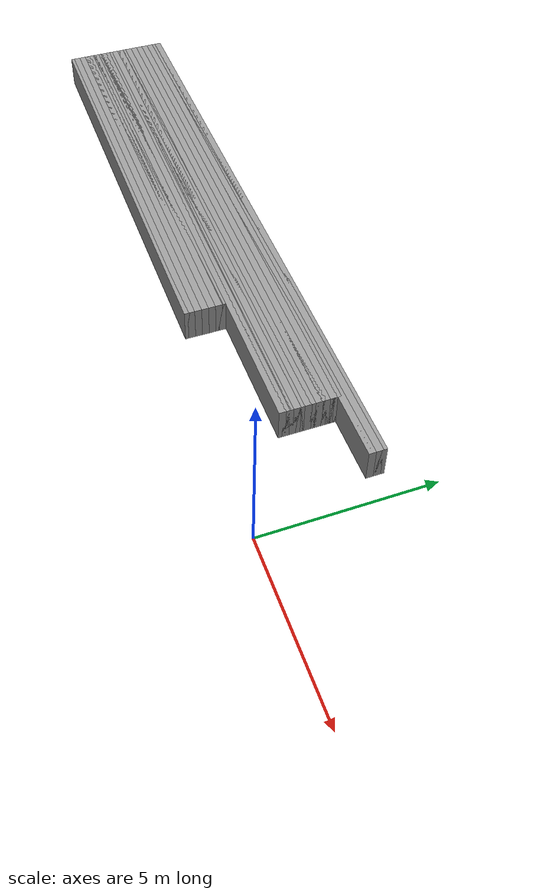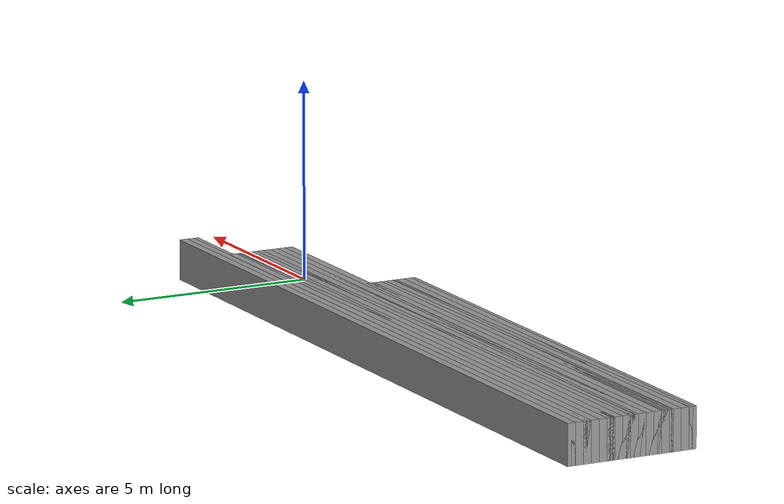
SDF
<sdf version="1.6">
 <world name="GridMap">
  <model name="GridMap">
   <link name="Wall_(131.5,4.0)">
    <collision name="Wall_(131.5,4.0)_Collision">
     <geometry><box><size>13.5 0.2 1.0</size></box></geometry>
     <pose>-13.15 0.4 0.5 0 -0 0</pose>
    </collision>
    <visual name="Wall_(131.5,4.0)_Visual">
     <geometry><box><size>13.5 0.2 1.0</size></box></geometry>
     <pose>-13.15 0.4 0.5 0 -0 0</pose>
     <material>
      <script><uri>file://media/materials/scripts/gazebo.material</uri><name>Gazebo/Grey</name></script>
      <ambient>1 1 1 1</ambient>
     </material>
     <meta><layer>0</layer></meta>
    </visual>
    <pose>0 0 0.5 0 -0 0</pose>
   </link>
   <link name="Wall_(131.5,5.0)">
    <collision name="Wall_(131.5,5.0)_Collision">
     <geometry><box><size>13.5 0.2 1.0</size></box></geometry>
     <pose>-13.15 0.5 0.5 0 -0 0</pose>
    </collision>
    <visual name="Wall_(131.5,5.0)_Visual">
     <geometry><box><size>13.5 0.2 1.0</size></box></geometry>
     <pose>-13.15 0.5 0.5 0 -0 0</pose>
     <material>
      <script><uri>file://media/materials/scripts/gazebo.material</uri><name>Gazebo/Grey</name></script>
      <ambient>1 1 1 1</ambient>
     </material>
     <meta><layer>0</layer></meta>
    </visual>
    <pose>0 0 0.5 0 -0 0</pose>
   </link>
   <link name="Wall_(131.5,6.0)">
    <collision name="Wall_(131.5,6.0)_Collision">
     <geometry><box><size>13.5 0.2 1.0</size></box></geometry>
     <pose>-13.15 0.6000000000000001 0.5 0 -0 0</pose>
    </collision>
    <visual name="Wall_(131.5,6.0)_Visual">
     <geometry><box><size>13.5 0.2 1.0</size></box></geometry>
     <pose>-13.15 0.6000000000000001 0.5 0 -0 0</pose>
     <material>
      <script><uri>file://media/materials/scripts/gazebo.material</uri><name>Gazebo/Grey</name></script>
      <ambient>1 1 1 1</ambient>
     </material>
     <meta><layer>0</layer></meta>
    </visual>
    <pose>0 0 0.5 0 -0 0</pose>
   </link>
   <link name="Wall_(131.5,7.0)">
    <collision name="Wall_(131.5,7.0)_Collision">
     <geometry><box><size>13.5 0.2 1.0</size></box></geometry>
     <pose>-13.15 0.7000000000000001 0.5 0 -0 0</pose>
    </collision>
    <visual name="Wall_(131.5,7.0)_Visual">
     <geometry><box><size>13.5 0.2 1.0</size></box></geometry>
     <pose>-13.15 0.7000000000000001 0.5 0 -0 0</pose>
     <material>
      <script><uri>file://media/materials/scripts/gazebo.material</uri><name>Gazebo/Grey</name></script>
      <ambient>1 1 1 1</ambient>
     </material>
     <meta><layer>0</layer></meta>
    </visual>
    <pose>0 0 0.5 0 -0 0</pose>
   </link>
   <link name="Wall_(131.5,8.0)">
    <collision name="Wall_(131.5,8.0)_Collision">
     <geometry><box><size>13.5 0.2 1.0</size></box></geometry>
     <pose>-13.15 0.8 0.5 0 -0 0</pose>
    </collision>
    <visual name="Wall_(131.5,8.0)_Visual">
     <geometry><box><size>13.5 0.2 1.0</size></box></geometry>
     <pose>-13.15 0.8 0.5 0 -0 0</pose>
     <material>
      <script><uri>file://media/materials/scripts/gazebo.material</uri><name>Gazebo/Grey</name></script>
      <ambient>1 1 1 1</ambient>
     </material>
     <meta><layer>0</layer></meta>
    </visual>
    <pose>0 0 0.5 0 -0 0</pose>
   </link>
   <link name="Wall_(131.5,9.0)">
    <collision name="Wall_(131.5,9.0)_Collision">
     <geometry><box><size>13.5 0.2 1.0</size></box></geometry>
     <pose>-13.15 0.9 0.5 0 -0 0</pose>
    </collision>
    <visual name="Wall_(131.5,9.0)_Visual">
     <geometry><box><size>13.5 0.2 1.0</size></box></geometry>
     <pose>-13.15 0.9 0.5 0 -0 0</pose>
     <material>
      <script><uri>file://media/materials/scripts/gazebo.material</uri><name>Gazebo/Grey</name></script>
      <ambient>1 1 1 1</ambient>
     </material>
     <meta><layer>0</layer></meta>
    </visual>
    <pose>0 0 0.5 0 -0 0</pose>
   </link>
   <link name="Wall_(131.5,10.0)">
    <collision name="Wall_(131.5,10.0)_Collision">
     <geometry><box><size>13.5 0.2 1.0</size></box></geometry>
     <pose>-13.15 1.0 0.5 0 -0 0</pose>
    </collision>
    <visual name="Wall_(131.5,10.0)_Visual">
     <geometry><box><size>13.5 0.2 1.0</size></box></geometry>
     <pose>-13.15 1.0 0.5 0 -0 0</pose>
     <material>
      <script><uri>file://media/materials/scripts/gazebo.material</uri><name>Gazebo/Grey</name></script>
      <ambient>1 1 1 1</ambient>
     </material>
     <meta><layer>0</layer></meta>
    </visual>
    <pose>0 0 0.5 0 -0 0</pose>
   </link>
   <link name="Wall_(131.5,11.0)">
    <collision name="Wall_(131.5,11.0)_Collision">
     <geometry><box><size>13.5 0.2 1.0</size></box></geometry>
     <pose>-13.15 1.1 0.5 0 -0 0</pose>
    </collision>
    <visual name="Wall_(131.5,11.0)_Visual">
     <geometry><box><size>13.5 0.2 1.0</size></box></geometry>
     <pose>-13.15 1.1 0.5 0 -0 0</pose>
     <material>
      <script><uri>file://media/materials/scripts/gazebo.material</uri><name>Gazebo/Grey</name></script>
      <ambient>1 1 1 1</ambient>
     </material>
     <meta><layer>0</layer></meta>
    </visual>
    <pose>0 0 0.5 0 -0 0</pose>
   </link>
   <link name="Wall_(131.5,12.0)">
    <collision name="Wall_(131.5,12.0)_Collision">
     <geometry><box><size>13.5 0.2 1.0</size></box></geometry>
     <pose>-13.15 1.2000000000000002 0.5 0 -0 0</pose>
    </collision>
    <visual name="Wall_(131.5,12.0)_Visual">
     <geometry><box><size>13.5 0.2 1.0</size></box></geometry>
     <pose>-13.15 1.2000000000000002 0.5 0 -0 0</pose>
     <material>
      <script><uri>file://media/materials/scripts/gazebo.material</uri><name>Gazebo/Grey</name></script>
      <ambient>1 1 1 1</ambient>
     </material>
     <meta><layer>0</layer></meta>
    </visual>
    <pose>0 0 0.5 0 -0 0</pose>
   </link>
   <link name="Wall_(131.5,13.0)">
    <collision name="Wall_(131.5,13.0)_Collision">
     <geometry><box><size>13.5 0.2 1.0</size></box></geometry>
     <pose>-13.15 1.3 0.5 0 -0 0</pose>
    </collision>
    <visual name="Wall_(131.5,13.0)_Visual">
     <geometry><box><size>13.5 0.2 1.0</size></box></geometry>
     <pose>-13.15 1.3 0.5 0 -0 0</pose>
     <material>
      <script><uri>file://media/materials/scripts/gazebo.material</uri><name>Gazebo/Grey</name></script>
      <ambient>1 1 1 1</ambient>
     </material>
     <meta><layer>0</layer></meta>
    </visual>
    <pose>0 0 0.5 0 -0 0</pose>
   </link>
   <link name="Wall_(131.5,14.0)">
    <collision name="Wall_(131.5,14.0)_Collision">
     <geometry><box><size>13.5 0.2 1.0</size></box></geometry>
     <pose>-13.15 1.4000000000000001 0.5 0 -0 0</pose>
    </collision>
    <visual name="Wall_(131.5,14.0)_Visual">
     <geometry><box><size>13.5 0.2 1.0</size></box></geometry>
     <pose>-13.15 1.4000000000000001 0.5 0 -0 0</pose>
     <material>
      <script><uri>file://media/materials/scripts/gazebo.material</uri><name>Gazebo/Grey</name></script>
      <ambient>1 1 1 1</ambient>
     </material>
     <meta><layer>0</layer></meta>
    </visual>
    <pose>0 0 0.5 0 -0 0</pose>
   </link>
   <link name="Wall_(131.5,15.0)">
    <collision name="Wall_(131.5,15.0)_Collision">
     <geometry><box><size>13.5 0.2 1.0</size></box></geometry>
     <pose>-13.15 1.5 0.5 0 -0 0</pose>
    </collision>
    <visual name="Wall_(131.5,15.0)_Visual">
     <geometry><box><size>13.5 0.2 1.0</size></box></geometry>
     <pose>-13.15 1.5 0.5 0 -0 0</pose>
     <material>
      <script><uri>file://media/materials/scripts/gazebo.material</uri><name>Gazebo/Grey</name></script>
      <ambient>1 1 1 1</ambient>
     </material>
     <meta><layer>0</layer></meta>
    </visual>
    <pose>0 0 0.5 0 -0 0</pose>
   </link>
   <link name="Wall_(111.0,16.0)">
    <collision name="Wall_(111.0,16.0)_Collision">
     <geometry><box><size>17.6 0.2 1.0</size></box></geometry>
     <pose>-11.100000000000001 1.6 0.5 0 -0 0</pose>
    </collision>
    <visual name="Wall_(111.0,16.0)_Visual">
     <geometry><box><size>17.6 0.2 1.0</size></box></geometry>
     <pose>-11.100000000000001 1.6 0.5 0 -0 0</pose>
     <material>
      <script><uri>file://media/materials/scripts/gazebo.material</uri><name>Gazebo/Grey</name></script>
      <ambient>1 1 1 1</ambient>
     </material>
     <meta><layer>0</layer></meta>
    </visual>
    <pose>0 0 0.5 0 -0 0</pose>
   </link>
   <link name="Wall_(111.0,17.0)">
    <collision name="Wall_(111.0,17.0)_Collision">
     <geometry><box><size>17.6 0.2 1.0</size></box></geometry>
     <pose>-11.100000000000001 1.7000000000000002 0.5 0 -0 0</pose>
    </collision>
    <visual name="Wall_(111.0,17.0)_Visual">
     <geometry><box><size>17.6 0.2 1.0</size></box></geometry>
     <pose>-11.100000000000001 1.7000000000000002 0.5 0 -0 0</pose>
     <material>
      <script><uri>file://media/materials/scripts/gazebo.material</uri><name>Gazebo/Grey</name></script>
      <ambient>1 1 1 1</ambient>
     </material>
     <meta><layer>0</layer></meta>
    </visual>
    <pose>0 0 0.5 0 -0 0</pose>
   </link>
   <link name="Wall_(111.0,18.0)">
    <collision name="Wall_(111.0,18.0)_Collision">
     <geometry><box><size>17.6 0.2 1.0</size></box></geometry>
     <pose>-11.100000000000001 1.8 0.5 0 -0 0</pose>
    </collision>
    <visual name="Wall_(111.0,18.0)_Visual">
     <geometry><box><size>17.6 0.2 1.0</size></box></geometry>
     <pose>-11.100000000000001 1.8 0.5 0 -0 0</pose>
     <material>
      <script><uri>file://media/materials/scripts/gazebo.material</uri><name>Gazebo/Grey</name></script>
      <ambient>1 1 1 1</ambient>
     </material>
     <meta><layer>0</layer></meta>
    </visual>
    <pose>0 0 0.5 0 -0 0</pose>
   </link>
   <link name="Wall_(111.0,19.0)">
    <collision name="Wall_(111.0,19.0)_Collision">
     <geometry><box><size>17.6 0.2 1.0</size></box></geometry>
     <pose>-11.100000000000001 1.9000000000000001 0.5 0 -0 0</pose>
    </collision>
    <visual name="Wall_(111.0,19.0)_Visual">
     <geometry><box><size>17.6 0.2 1.0</size></box></geometry>
     <pose>-11.100000000000001 1.9000000000000001 0.5 0 -0 0</pose>
     <material>
      <script><uri>file://media/materials/scripts/gazebo.material</uri><name>Gazebo/Grey</name></script>
      <ambient>1 1 1 1</ambient>
     </material>
     <meta><layer>0</layer></meta>
    </visual>
    <pose>0 0 0.5 0 -0 0</pose>
   </link>
   <link name="Wall_(111.0,20.0)">
    <collision name="Wall_(111.0,20.0)_Collision">
     <geometry><box><size>17.6 0.2 1.0</size></box></geometry>
     <pose>-11.100000000000001 2.0 0.5 0 -0 0</pose>
    </collision>
    <visual name="Wall_(111.0,20.0)_Visual">
     <geometry><box><size>17.6 0.2 1.0</size></box></geometry>
     <pose>-11.100000000000001 2.0 0.5 0 -0 0</pose>
     <material>
      <script><uri>file://media/materials/scripts/gazebo.material</uri><name>Gazebo/Grey</name></script>
      <ambient>1 1 1 1</ambient>
     </material>
     <meta><layer>0</layer></meta>
    </visual>
    <pose>0 0 0.5 0 -0 0</pose>
   </link>
   <link name="Wall_(111.0,21.0)">
    <collision name="Wall_(111.0,21.0)_Collision">
     <geometry><box><size>17.6 0.2 1.0</size></box></geometry>
     <pose>-11.100000000000001 2.1 0.5 0 -0 0</pose>
    </collision>
    <visual name="Wall_(111.0,21.0)_Visual">
     <geometry><box><size>17.6 0.2 1.0</size></box></geometry>
     <pose>-11.100000000000001 2.1 0.5 0 -0 0</pose>
     <material>
      <script><uri>file://media/materials/scripts/gazebo.material</uri><name>Gazebo/Grey</name></script>
      <ambient>1 1 1 1</ambient>
     </material>
     <meta><layer>0</layer></meta>
    </visual>
    <pose>0 0 0.5 0 -0 0</pose>
   </link>
   <link name="Wall_(111.0,22.0)">
    <collision name="Wall_(111.0,22.0)_Collision">
     <geometry><box><size>17.6 0.2 1.0</size></box></geometry>
     <pose>-11.100000000000001 2.2 0.5 0 -0 0</pose>
    </collision>
    <visual name="Wall_(111.0,22.0)_Visual">
     <geometry><box><size>17.6 0.2 1.0</size></box></geometry>
     <pose>-11.100000000000001 2.2 0.5 0 -0 0</pose>
     <material>
      <script><uri>file://media/materials/scripts/gazebo.material</uri><name>Gazebo/Grey</name></script>
      <ambient>1 1 1 1</ambient>
     </material>
     <meta><layer>0</layer></meta>
    </visual>
    <pose>0 0 0.5 0 -0 0</pose>
   </link>
   <link name="Wall_(111.0,23.0)">
    <collision name="Wall_(111.0,23.0)_Collision">
     <geometry><box><size>17.6 0.2 1.0</size></box></geometry>
     <pose>-11.100000000000001 2.3000000000000003 0.5 0 -0 0</pose>
    </collision>
    <visual name="Wall_(111.0,23.0)_Visual">
     <geometry><box><size>17.6 0.2 1.0</size></box></geometry>
     <pose>-11.100000000000001 2.3000000000000003 0.5 0 -0 0</pose>
     <material>
      <script><uri>file://media/materials/scripts/gazebo.material</uri><name>Gazebo/Grey</name></script>
      <ambient>1 1 1 1</ambient>
     </material>
     <meta><layer>0</layer></meta>
    </visual>
    <pose>0 0 0.5 0 -0 0</pose>
   </link>
   <link name="Wall_(111.0,24.0)">
    <collision name="Wall_(111.0,24.0)_Collision">
     <geometry><box><size>17.6 0.2 1.0</size></box></geometry>
     <pose>-11.100000000000001 2.4000000000000004 0.5 0 -0 0</pose>
    </collision>
    <visual name="Wall_(111.0,24.0)_Visual">
     <geometry><box><size>17.6 0.2 1.0</size></box></geometry>
     <pose>-11.100000000000001 2.4000000000000004 0.5 0 -0 0</pose>
     <material>
      <script><uri>file://media/materials/scripts/gazebo.material</uri><name>Gazebo/Grey</name></script>
      <ambient>1 1 1 1</ambient>
     </material>
     <meta><layer>0</layer></meta>
    </visual>
    <pose>0 0 0.5 0 -0 0</pose>
   </link>
   <link name="Wall_(111.0,25.0)">
    <collision name="Wall_(111.0,25.0)_Collision">
     <geometry><box><size>17.6 0.2 1.0</size></box></geometry>
     <pose>-11.100000000000001 2.5 0.5 0 -0 0</pose>
    </collision>
    <visual name="Wall_(111.0,25.0)_Visual">
     <geometry><box><size>17.6 0.2 1.0</size></box></geometry>
     <pose>-11.100000000000001 2.5 0.5 0 -0 0</pose>
     <material>
      <script><uri>file://media/materials/scripts/gazebo.material</uri><name>Gazebo/Grey</name></script>
      <ambient>1 1 1 1</ambient>
     </material>
     <meta><layer>0</layer></meta>
    </visual>
    <pose>0 0 0.5 0 -0 0</pose>
   </link>
   <link name="Wall_(111.0,26.0)">
    <collision name="Wall_(111.0,26.0)_Collision">
     <geometry><box><size>17.6 0.2 1.0</size></box></geometry>
     <pose>-11.100000000000001 2.6 0.5 0 -0 0</pose>
    </collision>
    <visual name="Wall_(111.0,26.0)_Visual">
     <geometry><box><size>17.6 0.2 1.0</size></box></geometry>
     <pose>-11.100000000000001 2.6 0.5 0 -0 0</pose>
     <material>
      <script><uri>file://media/materials/scripts/gazebo.material</uri><name>Gazebo/Grey</name></script>
      <ambient>1 1 1 1</ambient>
     </material>
     <meta><layer>0</layer></meta>
    </visual>
    <pose>0 0 0.5 0 -0 0</pose>
   </link>
   <link name="Wall_(111.0,27.0)">
    <collision name="Wall_(111.0,27.0)_Collision">
     <geometry><box><size>17.6 0.2 1.0</size></box></geometry>
     <pose>-11.100000000000001 2.7 0.5 0 -0 0</pose>
    </collision>
    <visual name="Wall_(111.0,27.0)_Visual">
     <geometry><box><size>17.6 0.2 1.0</size></box></geometry>
     <pose>-11.100000000000001 2.7 0.5 0 -0 0</pose>
     <material>
      <script><uri>file://media/materials/scripts/gazebo.material</uri><name>Gazebo/Grey</name></script>
      <ambient>1 1 1 1</ambient>
     </material>
     <meta><layer>0</layer></meta>
    </visual>
    <pose>0 0 0.5 0 -0 0</pose>
   </link>
   <link name="Wall_(111.0,28.0)">
    <collision name="Wall_(111.0,28.0)_Collision">
     <geometry><box><size>17.6 0.2 1.0</size></box></geometry>
     <pose>-11.100000000000001 2.8000000000000003 0.5 0 -0 0</pose>
    </collision>
    <visual name="Wall_(111.0,28.0)_Visual">
     <geometry><box><size>17.6 0.2 1.0</size></box></geometry>
     <pose>-11.100000000000001 2.8000000000000003 0.5 0 -0 0</pose>
     <material>
      <script><uri>file://media/materials/scripts/gazebo.material</uri><name>Gazebo/Grey</name></script>
      <ambient>1 1 1 1</ambient>
     </material>
     <meta><layer>0</layer></meta>
    </visual>
    <pose>0 0 0.5 0 -0 0</pose>
   </link>
   <link name="Wall_(111.0,29.0)">
    <collision name="Wall_(111.0,29.0)_Collision">
     <geometry><box><size>17.6 0.2 1.0</size></box></geometry>
     <pose>-11.100000000000001 2.9000000000000004 0.5 0 -0 0</pose>
    </collision>
    <visual name="Wall_(111.0,29.0)_Visual">
     <geometry><box><size>17.6 0.2 1.0</size></box></geometry>
     <pose>-11.100000000000001 2.9000000000000004 0.5 0 -0 0</pose>
     <material>
      <script><uri>file://media/materials/scripts/gazebo.material</uri><name>Gazebo/Grey</name></script>
      <ambient>1 1 1 1</ambient>
     </material>
     <meta><layer>0</layer></meta>
    </visual>
    <pose>0 0 0.5 0 -0 0</pose>
   </link>
   <link name="Wall_(111.0,30.0)">
    <collision name="Wall_(111.0,30.0)_Collision">
     <geometry><box><size>17.6 0.2 1.0</size></box></geometry>
     <pose>-11.100000000000001 3.0 0.5 0 -0 0</pose>
    </collision>
    <visual name="Wall_(111.0,30.0)_Visual">
     <geometry><box><size>17.6 0.2 1.0</size></box></geometry>
     <pose>-11.100000000000001 3.0 0.5 0 -0 0</pose>
     <material>
      <script><uri>file://media/materials/scripts/gazebo.material</uri><name>Gazebo/Grey</name></script>
      <ambient>1 1 1 1</ambient>
     </material>
     <meta><layer>0</layer></meta>
    </visual>
    <pose>0 0 0.5 0 -0 0</pose>
   </link>
   <link name="Wall_(111.0,31.0)">
    <collision name="Wall_(111.0,31.0)_Collision">
     <geometry><box><size>17.6 0.2 1.0</size></box></geometry>
     <pose>-11.100000000000001 3.1 0.5 0 -0 0</pose>
    </collision>
    <visual name="Wall_(111.0,31.0)_Visual">
     <geometry><box><size>17.6 0.2 1.0</size></box></geometry>
     <pose>-11.100000000000001 3.1 0.5 0 -0 0</pose>
     <material>
      <script><uri>file://media/materials/scripts/gazebo.material</uri><name>Gazebo/Grey</name></script>
      <ambient>1 1 1 1</ambient>
     </material>
     <meta><layer>0</layer></meta>
    </visual>
    <pose>0 0 0.5 0 -0 0</pose>
   </link>
   <link name="Wall_(101.5,32.0)">
    <collision name="Wall_(101.5,32.0)_Collision">
     <geometry><box><size>19.5 0.2 1.0</size></box></geometry>
     <pose>-10.15 3.2 0.5 0 -0 0</pose>
    </collision>
    <visual name="Wall_(101.5,32.0)_Visual">
     <geometry><box><size>19.5 0.2 1.0</size></box></geometry>
     <pose>-10.15 3.2 0.5 0 -0 0</pose>
     <material>
      <script><uri>file://media/materials/scripts/gazebo.material</uri><name>Gazebo/Grey</name></script>
      <ambient>1 1 1 1</ambient>
     </material>
     <meta><layer>0</layer></meta>
    </visual>
    <pose>0 0 0.5 0 -0 0</pose>
   </link>
   <link name="Wall_(101.5,33.0)">
    <collision name="Wall_(101.5,33.0)_Collision">
     <geometry><box><size>19.5 0.2 1.0</size></box></geometry>
     <pose>-10.15 3.3000000000000003 0.5 0 -0 0</pose>
    </collision>
    <visual name="Wall_(101.5,33.0)_Visual">
     <geometry><box><size>19.5 0.2 1.0</size></box></geometry>
     <pose>-10.15 3.3000000000000003 0.5 0 -0 0</pose>
     <material>
      <script><uri>file://media/materials/scripts/gazebo.material</uri><name>Gazebo/Grey</name></script>
      <ambient>1 1 1 1</ambient>
     </material>
     <meta><layer>0</layer></meta>
    </visual>
    <pose>0 0 0.5 0 -0 0</pose>
   </link>
   <link name="Wall_(101.5,34.0)">
    <collision name="Wall_(101.5,34.0)_Collision">
     <geometry><box><size>19.5 0.2 1.0</size></box></geometry>
     <pose>-10.15 3.4000000000000004 0.5 0 -0 0</pose>
    </collision>
    <visual name="Wall_(101.5,34.0)_Visual">
     <geometry><box><size>19.5 0.2 1.0</size></box></geometry>
     <pose>-10.15 3.4000000000000004 0.5 0 -0 0</pose>
     <material>
      <script><uri>file://media/materials/scripts/gazebo.material</uri><name>Gazebo/Grey</name></script>
      <ambient>1 1 1 1</ambient>
     </material>
     <meta><layer>0</layer></meta>
    </visual>
    <pose>0 0 0.5 0 -0 0</pose>
   </link>
   <link name="Wall_(101.5,35.0)">
    <collision name="Wall_(101.5,35.0)_Collision">
     <geometry><box><size>19.5 0.2 1.0</size></box></geometry>
     <pose>-10.15 3.5 0.5 0 -0 0</pose>
    </collision>
    <visual name="Wall_(101.5,35.0)_Visual">
     <geometry><box><size>19.5 0.2 1.0</size></box></geometry>
     <pose>-10.15 3.5 0.5 0 -0 0</pose>
     <material>
      <script><uri>file://media/materials/scripts/gazebo.material</uri><name>Gazebo/Grey</name></script>
      <ambient>1 1 1 1</ambient>
     </material>
     <meta><layer>0</layer></meta>
    </visual>
    <pose>0 0 0.5 0 -0 0</pose>
   </link>
   <static>1</static>
  </model>
 </world>
</sdf>
